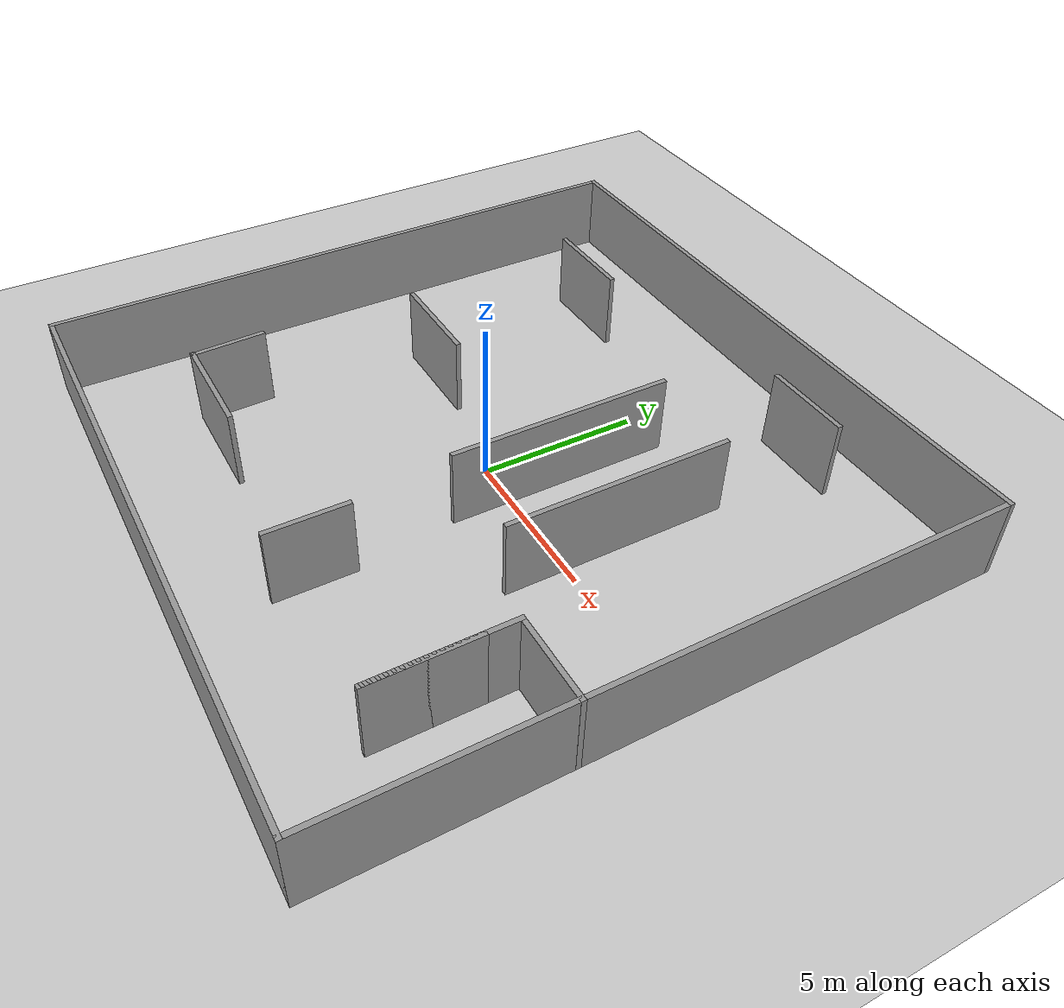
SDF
<sdf version="1.7">
 <world name="default">
  <light name="sun" type="directional">
   <pose>0 0 10 0 -0 0</pose>
   <diffuse>0.8 0.8 0.8 1</diffuse>
   <specular>0.2 0.2 0.2 1</specular>
   <attenuation>
    <range>1000</range>
    <constant>0.9</constant>
    <linear>0.01</linear>
    <quadratic>0.001</quadratic>
   </attenuation>
   <direction>-0.5 0.1 -0.9</direction>
   <spot><inner_angle>0</inner_angle><outer_angle>0</outer_angle><falloff>0</falloff></spot>
  </light>
  <model name="ground_plane">
   <static>1</static>
   <link name="link">
    <collision name="collision">
     <geometry><plane><normal>0 0 1</normal><size>100 100</size></plane></geometry>
     <surface><friction><ode><mu>100</mu><mu2>50</mu2></ode></friction></surface>
    </collision>
    <visual name="visual">
     <cast_shadows>0</cast_shadows>
     <geometry><plane><normal>0 0 1</normal><size>100 100</size></plane></geometry>
     <material>
      <script><uri>file://media/materials/scripts/gazebo.material</uri><name>Gazebo/Grey</name></script>
     </material>
    </visual>
   </link>
  </model>
  <gravity>0 0 -9.8</gravity>
  <magnetic_field>6e-06 2.3e-05 -4.2e-05</magnetic_field>
  <atmosphere type="adiabatic"/>
  <physics type="ode">
   <max_step_size>0.001</max_step_size>
   <real_time_factor>1</real_time_factor>
   <real_time_update_rate>1000</real_time_update_rate>
  </physics>
  <scene><ambient>0.4 0.4 0.4 1</ambient><background>0.7 0.7 0.7 1</background><shadows>1</shadows></scene>
  <spherical_coordinates>
   <surface_model>EARTH_WGS84</surface_model>
   <latitude_deg>0</latitude_deg>
   <longitude_deg>0</longitude_deg>
   <elevation>0</elevation>
   <heading_deg>0</heading_deg>
  </spherical_coordinates>
  <model name="test_map">
   <pose>0.003706 -0.020508 0 0 -0 0</pose>
   <link name="Wall_0">
    <collision name="Wall_0_Collision">
     <geometry><box><size>20 0.15 2.5</size></box></geometry>
     <pose>0 0 1.25 0 -0 0</pose>
    </collision>
    <visual name="Wall_0_Visual">
     <pose>0 0 1.25 0 -0 0</pose>
     <geometry><box><size>20 0.15 2.5</size></box></geometry>
     <material>
      <script><uri>file://media/materials/scripts/gazebo.material</uri><name>Gazebo/Grey</name></script>
      <ambient>1 1 1 1</ambient>
     </material>
     <meta><layer>0</layer></meta>
    </visual>
    <pose>-0.001663 -9.925 0 0 -0 0</pose>
   </link>
   <link name="Wall_11">
    <collision name="Wall_11_Collision">
     <geometry><box><size>7 0.15 2.5</size></box></geometry>
     <pose>0 0 1.25 0 -0 0</pose>
    </collision>
    <visual name="Wall_11_Visual">
     <pose>0 0 1.25 0 -0 0</pose>
     <geometry><box><size>7 0.15 2.5</size></box></geometry>
     <material>
      <script><uri>file://media/materials/scripts/gazebo.material</uri><name>Gazebo/Grey</name></script>
      <ambient>1 1 1 1</ambient>
     </material>
     <meta><layer>0</layer></meta>
    </visual>
    <pose>1.42275 1.66807 0 0 -0 -1.5708</pose>
   </link>
   <link name="Wall_13">
    <collision name="Wall_13_Collision">
     <geometry><box><size>3 0.15 2.5</size></box></geometry>
     <pose>0 0 1.25 0 -0 0</pose>
    </collision>
    <visual name="Wall_13_Visual">
     <pose>0 0 1.25 0 -0 0</pose>
     <geometry><box><size>3 0.15 2.5</size></box></geometry>
     <material>
      <script><uri>file://media/materials/scripts/gazebo.material</uri><name>Gazebo/Grey</name></script>
      <ambient>1 1 1 1</ambient>
     </material>
     <meta><layer>0</layer></meta>
    </visual>
    <pose>-5.38613 6.80612 0 0 -0 3.14159</pose>
   </link>
   <link name="Wall_15">
    <collision name="Wall_15_Collision">
     <geometry><box><size>3.25 0.15 2.5</size></box></geometry>
     <pose>0 0 1.25 0 -0 0</pose>
    </collision>
    <visual name="Wall_15_Visual">
     <pose>0 0 1.25 0 -0 0</pose>
     <geometry><box><size>3.25 0.15 2.5</size></box></geometry>
     <material>
      <script><uri>file://media/materials/scripts/gazebo.material</uri><name>Gazebo/Grey</name></script>
      <ambient>1 1 1 1</ambient>
     </material>
     <meta><layer>0</layer></meta>
    </visual>
    <pose>-4.64422 0.688075 0 0 -0 0</pose>
   </link>
   <link name="Wall_17">
    <collision name="Wall_17_Collision">
     <geometry><box><size>2.3184 0.15 2.5</size></box></geometry>
     <pose>0 0 1.25 0 -0 0</pose>
    </collision>
    <visual name="Wall_17_Visual">
     <pose>0 0 1.25 0 -0 0</pose>
     <geometry><box><size>2.3184 0.15 2.5</size></box></geometry>
     <material>
      <script><uri>file://media/materials/scripts/gazebo.material</uri><name>Gazebo/Grey</name></script>
      <ambient>1 1 1 1</ambient>
     </material>
     <meta><layer>0</layer></meta>
    </visual>
    <pose>-6.39305 -5.41195 0 0 -0 -1.52846</pose>
   </link>
   <link name="Wall_18">
    <collision name="Wall_18_Collision">
     <geometry><box><size>3.5 0.15 2.5</size></box></geometry>
     <pose>0 0 1.25 0 -0 0</pose>
    </collision>
    <visual name="Wall_18_Visual">
     <pose>0 0 1.25 0 -0 0</pose>
     <geometry><box><size>3.5 0.15 2.5</size></box></geometry>
     <material>
      <script><uri>file://media/materials/scripts/gazebo.material</uri><name>Gazebo/Grey</name></script>
      <ambient>1 1 1 1</ambient>
     </material>
     <meta><layer>0</layer></meta>
    </visual>
    <pose>-4.70276 -6.52577 0 0 -0 0</pose>
   </link>
   <link name="Wall_2">
    <collision name="Wall_2_Collision">
     <geometry><box><size>20 0.15 2.5</size></box></geometry>
     <pose>0 0 1.25 0 -0 0</pose>
    </collision>
    <visual name="Wall_2_Visual">
     <pose>0 0 1.25 0 -0 0</pose>
     <geometry><box><size>20 0.15 2.5</size></box></geometry>
     <material>
      <script><uri>file://media/materials/scripts/gazebo.material</uri><name>Gazebo/Grey</name></script>
      <ambient>1 1 1 1</ambient>
     </material>
     <meta><layer>0</layer></meta>
    </visual>
    <pose>9.92334 -0 0 0 -0 1.5708</pose>
   </link>
   <link name="Wall_20">
    <collision name="Wall_20_Collision">
     <geometry><box><size>2.75 0.15 2.5</size></box></geometry>
     <pose>0 0 1.25 0 -0 0</pose>
    </collision>
    <visual name="Wall_20_Visual">
     <pose>0 0 1.25 0 -0 0</pose>
     <geometry><box><size>2.75 0.15 2.5</size></box></geometry>
     <material>
      <script><uri>file://media/materials/scripts/gazebo.material</uri><name>Gazebo/Grey</name></script>
      <ambient>1 1 1 1</ambient>
     </material>
     <meta><layer>0</layer></meta>
    </visual>
    <pose>4.13007 8.18268 0 0 -0 3.14159</pose>
   </link>
   <link name="Wall_22">
    <collision name="Wall_22_Collision">
     <geometry><box><size>3.25 0.15 2.5</size></box></geometry>
     <pose>0 0 1.25 0 -0 0</pose>
    </collision>
    <visual name="Wall_22_Visual">
     <pose>0 0 1.25 0 -0 0</pose>
     <geometry><box><size>3.25 0.15 2.5</size></box></geometry>
     <material>
      <script><uri>file://media/materials/scripts/gazebo.material</uri><name>Gazebo/Grey</name></script>
      <ambient>1 1 1 1</ambient>
     </material>
     <meta><layer>0</layer></meta>
    </visual>
    <pose>7.32666 -5.54223 0 0 -0 -1.5708</pose>
   </link>
   <link name="Wall_23">
    <collision name="Wall_23_Collision">
     <geometry><box><size>4.25 0.15 2.5</size></box></geometry>
     <pose>0 0 1.25 0 -0 0</pose>
    </collision>
    <visual name="Wall_23_Visual">
     <pose>0 0 1.25 0 -0 0</pose>
     <geometry><box><size>4.25 0.15 2.5</size></box></geometry>
     <material>
      <script><uri>file://media/materials/scripts/gazebo.material</uri><name>Gazebo/Grey</name></script>
      <ambient>1 1 1 1</ambient>
     </material>
     <meta><layer>0</layer></meta>
    </visual>
    <pose>7.32666 -5.04223 0 0 -0 1.5708</pose>
   </link>
   <link name="Wall_24">
    <collision name="Wall_24_Collision">
     <geometry><box><size>2.75 0.15 2.5</size></box></geometry>
     <pose>0 0 1.25 0 -0 0</pose>
    </collision>
    <visual name="Wall_24_Visual">
     <pose>0 0 1.25 0 -0 0</pose>
     <geometry><box><size>2.75 0.15 2.5</size></box></geometry>
     <material>
      <script><uri>file://media/materials/scripts/gazebo.material</uri><name>Gazebo/Grey</name></script>
      <ambient>1 1 1 1</ambient>
     </material>
     <meta><layer>0</layer></meta>
    </visual>
    <pose>8.62666 -2.99223 0 0 -0 0</pose>
   </link>
   <link name="Wall_26">
    <collision name="Wall_26_Collision">
     <geometry><box><size>2.5 0.15 2.5</size></box></geometry>
     <pose>0 0 1.25 0 -0 0</pose>
    </collision>
    <visual name="Wall_26_Visual">
     <pose>0 0 1.25 0 -0 0</pose>
     <geometry><box><size>2.5 0.15 2.5</size></box></geometry>
     <material>
      <script><uri>file://media/materials/scripts/gazebo.material</uri><name>Gazebo/Grey</name></script>
      <ambient>1 1 1 1</ambient>
     </material>
     <meta><layer>0</layer></meta>
    </visual>
    <pose>1.85101 -6.14612 0 0 -0 -1.5708</pose>
   </link>
   <link name="Wall_3">
    <collision name="Wall_3_Collision">
     <geometry><box><size>20 0.15 2.5</size></box></geometry>
     <pose>0 0 1.25 0 -0 0</pose>
    </collision>
    <visual name="Wall_3_Visual">
     <pose>0 0 1.25 0 -0 0</pose>
     <geometry><box><size>20 0.15 2.5</size></box></geometry>
     <material>
      <script><uri>file://media/materials/scripts/gazebo.material</uri><name>Gazebo/Grey</name></script>
      <ambient>1 1 1 1</ambient>
     </material>
     <meta><layer>0</layer></meta>
    </visual>
    <pose>-0.001663 9.925 0 0 -0 3.14159</pose>
   </link>
   <link name="Wall_4">
    <collision name="Wall_4_Collision">
     <geometry><box><size>20 0.15 2.5</size></box></geometry>
     <pose>0 0 1.25 0 -0 0</pose>
    </collision>
    <visual name="Wall_4_Visual">
     <pose>0 0 1.25 0 -0 0</pose>
     <geometry><box><size>20 0.15 2.5</size></box></geometry>
     <material>
      <script><uri>file://media/materials/scripts/gazebo.material</uri><name>Gazebo/Grey</name></script>
      <ambient>1 1 1 1</ambient>
     </material>
     <meta><layer>0</layer></meta>
    </visual>
    <pose>-9.92666 -0 0 0 -0 -1.5708</pose>
   </link>
   <link name="Wall_9">
    <collision name="Wall_9_Collision">
     <geometry><box><size>7 0.15 2.5</size></box></geometry>
     <pose>0 0 1.25 0 -0 0</pose>
    </collision>
    <visual name="Wall_9_Visual">
     <pose>0 0 1.25 0 -0 0</pose>
     <geometry><box><size>7 0.15 2.5</size></box></geometry>
     <material>
      <script><uri>file://media/materials/scripts/gazebo.material</uri><name>Gazebo/Grey</name></script>
      <ambient>1 1 1 1</ambient>
     </material>
     <meta><layer>0</layer></meta>
    </visual>
    <pose>4.48177 1.62255 0 0 -0 1.5708</pose>
   </link>
   <static>1</static>
  </model>
 </world>
</sdf>
